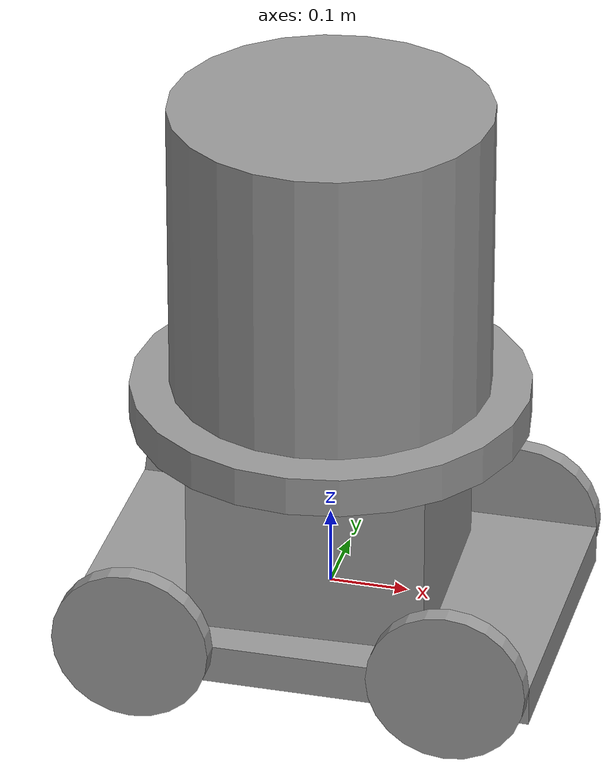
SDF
<?xml version='1.0'?>
<sdf version='1.6'>
  <model name='4x4_robot'>
    <link name='link_0'>
      <pose frame=''>-0 0 -0.02 0 -0 0</pose>
      <inertial>
        <mass>1</mass>
        <inertia>
          <ixx>0.166667</ixx>
          <ixy>0</ixy>
          <ixz>0</ixz>
          <iyy>0.166667</iyy>
          <iyz>0</iyz>
          <izz>0.166667</izz>
        </inertia>
        <pose frame=''>0 0 0 0 -0 0</pose>
      </inertial>
      <self_collide>0</self_collide>
      <kinematic>0</kinematic>
      <gravity>1</gravity>
      <visual name='visual'>
        <pose frame=''>0 0 0 0 -0 0</pose>
        <geometry>
          <box>
            <size>0.6 0.4 0.05</size>
          </box>
        </geometry>
        <material>
          <lighting>1</lighting>
          <script>
            <uri>file://media/materials/scripts/gazebo.material</uri>
            <name>Gazebo/Grey</name>
          </script>
          <shader type='pixel'>
            <normal_map>__default__</normal_map>
          </shader>
          <ambient>0.3 0.3 0.3 1</ambient>
          <diffuse>0.7 0.7 0.7 1</diffuse>
          <specular>0.01 0.01 0.01 1</specular>
          <emissive>0 0 0 1</emissive>
        </material>
        <transparency>0</transparency>
        <cast_shadows>1</cast_shadows>
      </visual>
      <collision name='collision'>
        <laser_retro>0</laser_retro>
        <max_contacts>10</max_contacts>
        <pose frame=''>0 0 0 0 -0 0</pose>
        <geometry>
          <box>
            <size>0.6 0.4 0.05</size>
          </box>
        </geometry>
        <surface>
          <friction>
            <ode>
              <mu>1</mu>
              <mu2>1</mu2>
              <fdir1>0 0 0</fdir1>
              <slip1>0</slip1>
              <slip2>0</slip2>
            </ode>
            <torsional>
              <coefficient>1</coefficient>
              <patch_radius>0</patch_radius>
              <surface_radius>0</surface_radius>
              <use_patch_radius>1</use_patch_radius>
              <ode>
                <slip>0</slip>
              </ode>
            </torsional>
          </friction>
          <bounce>
            <restitution_coefficient>0</restitution_coefficient>
            <threshold>1e+06</threshold>
          </bounce>
          <contact>
            <collide_without_contact>0</collide_without_contact>
            <collide_without_contact_bitmask>1</collide_without_contact_bitmask>
            <collide_bitmask>1</collide_bitmask>
            <ode>
              <soft_cfm>0</soft_cfm>
              <soft_erp>0.2</soft_erp>
              <kp>1e+13</kp>
              <kd>1</kd>
              <max_vel>0.01</max_vel>
              <min_depth>0</min_depth>
            </ode>
            <bullet>
              <split_impulse>1</split_impulse>
              <split_impulse_penetration_threshold>-0.01</split_impulse_penetration_threshold>
              <soft_cfm>0</soft_cfm>
              <soft_erp>0.2</soft_erp>
              <kp>1e+13</kp>
              <kd>1</kd>
            </bullet>
          </contact>
        </surface>
      </collision>
    </link>
    <link name='link_0_0'>
      <pose frame=''>9.4e-05 1e-06 0.104673 2.5e-05 0.001086 0.029379</pose>
      <inertial>
        <mass>1</mass>
        <inertia>
          <ixx>0.166667</ixx>
          <ixy>0</ixy>
          <ixz>0</ixz>
          <iyy>0.166667</iyy>
          <iyz>0</iyz>
          <izz>0.166667</izz>
        </inertia>
        <pose frame=''>0 0 0 0 -0 0</pose>
      </inertial>
      <gravity>1</gravity>
      <self_collide>0</self_collide>
      <kinematic>0</kinematic>
      <visual name='visual'>
        <pose frame=''>0 0 0 0 -0 0</pose>
        <geometry>
          <box>
            <size>0.3 0.3 0.3</size>
          </box>
        </geometry>
        <material>
          <lighting>1</lighting>
          <script>
            <uri>file://media/materials/scripts/gazebo.material</uri>
            <name>Gazebo/Grey</name>
          </script>
          <shader type='pixel'>
            <normal_map>__default__</normal_map>
          </shader>
          <ambient>0.3 0.3 0.3 1</ambient>
          <diffuse>0.7 0.7 0.7 1</diffuse>
          <specular>0.01 0.01 0.01 1</specular>
          <emissive>0 0 0 1</emissive>
        </material>
        <transparency>0</transparency>
        <cast_shadows>1</cast_shadows>
      </visual>
      <collision name='collision'>
        <laser_retro>0</laser_retro>
        <max_contacts>10</max_contacts>
        <pose frame=''>0 0 0 0 -0 0</pose>
        <geometry>
          <box>
            <size>0.3 0.3 0.3</size>
          </box>
        </geometry>
        <surface>
          <friction>
            <ode>
              <mu>1</mu>
              <mu2>1</mu2>
              <fdir1>0 0 0</fdir1>
              <slip1>0</slip1>
              <slip2>0</slip2>
            </ode>
            <torsional>
              <coefficient>1</coefficient>
              <patch_radius>0</patch_radius>
              <surface_radius>0</surface_radius>
              <use_patch_radius>1</use_patch_radius>
              <ode>
                <slip>0</slip>
              </ode>
            </torsional>
          </friction>
          <bounce>
            <restitution_coefficient>0</restitution_coefficient>
            <threshold>1e+06</threshold>
          </bounce>
          <contact>
            <collide_without_contact>0</collide_without_contact>
            <collide_without_contact_bitmask>1</collide_without_contact_bitmask>
            <collide_bitmask>1</collide_bitmask>
            <ode>
              <soft_cfm>0</soft_cfm>
              <soft_erp>0.2</soft_erp>
              <kp>1e+13</kp>
              <kd>1</kd>
              <max_vel>0.01</max_vel>
              <min_depth>0</min_depth>
            </ode>
            <bullet>
              <split_impulse>1</split_impulse>
              <split_impulse_penetration_threshold>-0.01</split_impulse_penetration_threshold>
              <soft_cfm>0</soft_cfm>
              <soft_erp>0.2</soft_erp>
              <kp>1e+13</kp>
              <kd>1</kd>
            </bullet>
          </contact>
        </surface>
      </collision>
    </link>
    <link name='link_1'>
      <pose frame=''>0.2 0.2125 0.005 1.5708 -0 0</pose>
      <inertial>
        <mass>1</mass>
        <inertia>
          <ixx>0.145833</ixx>
          <ixy>0</ixy>
          <ixz>0</ixz>
          <iyy>0.145833</iyy>
          <iyz>0</iyz>
          <izz>0.125</izz>
        </inertia>
        <pose frame=''>0 0 0 0 -0 0</pose>
      </inertial>
      <self_collide>0</self_collide>
      <kinematic>0</kinematic>
      <visual name='visual'>
        <pose frame=''>0 0 0 0 -0 0</pose>
        <geometry>
          <cylinder>
            <radius>0.1</radius>
            <length>0.025</length>
          </cylinder>
        </geometry>
        <material>
          <lighting>1</lighting>
          <script>
            <uri>file://media/materials/scripts/gazebo.material</uri>
            <name>Gazebo/Grey</name>
          </script>
          <shader type='pixel'>
            <normal_map>__default__</normal_map>
          </shader>
          <ambient>0.3 0.3 0.3 1</ambient>
          <diffuse>0.7 0.7 0.7 1</diffuse>
          <specular>0.01 0.01 0.01 1</specular>
          <emissive>0 0 0 1</emissive>
        </material>
        <transparency>0</transparency>
        <cast_shadows>1</cast_shadows>
      </visual>
      <collision name='collision'>
        <laser_retro>0</laser_retro>
        <max_contacts>10</max_contacts>
        <pose frame=''>0 0 0 0 -0 0</pose>
        <geometry>
          <cylinder>
            <radius>0.1</radius>
            <length>0.025</length>
          </cylinder>
        </geometry>
        <surface>
          <friction>
            <ode>
              <mu>1</mu>
              <mu2>1</mu2>
              <fdir1>0 0 0</fdir1>
              <slip1>0</slip1>
              <slip2>0</slip2>
            </ode>
            <torsional>
              <coefficient>1</coefficient>
              <patch_radius>0</patch_radius>
              <surface_radius>0</surface_radius>
              <use_patch_radius>1</use_patch_radius>
              <ode>
                <slip>0</slip>
              </ode>
            </torsional>
          </friction>
          <bounce>
            <restitution_coefficient>0</restitution_coefficient>
            <threshold>1e+06</threshold>
          </bounce>
          <contact>
            <collide_without_contact>0</collide_without_contact>
            <collide_without_contact_bitmask>1</collide_without_contact_bitmask>
            <collide_bitmask>1</collide_bitmask>
            <ode>
              <soft_cfm>0</soft_cfm>
              <soft_erp>0.2</soft_erp>
              <kp>1e+13</kp>
              <kd>1</kd>
              <max_vel>0.01</max_vel>
              <min_depth>0</min_depth>
            </ode>
            <bullet>
              <split_impulse>1</split_impulse>
              <split_impulse_penetration_threshold>-0.01</split_impulse_penetration_threshold>
              <soft_cfm>0</soft_cfm>
              <soft_erp>0.2</soft_erp>
              <kp>1e+13</kp>
              <kd>1</kd>
            </bullet>
          </contact>
        </surface>
      </collision>
    </link>
    <link name='link_1_0'>
      <pose frame=''>0.000268 2e-06 0.264673 2.5e-05 0.001086 0.029379</pose>
      <inertial>
        <mass>1</mass>
        <inertia>
          <ixx>0.145833</ixx>
          <ixy>0</ixy>
          <ixz>0</ixz>
          <iyy>0.145833</iyy>
          <iyz>0</iyz>
          <izz>0.125</izz>
        </inertia>
        <pose frame=''>0 0 0 0 -0 0</pose>
      </inertial>
      <gravity>1</gravity>
      <self_collide>0</self_collide>
      <kinematic>0</kinematic>
      <visual name='visual'>
        <pose frame=''>0 0 0 0 -0 0</pose>
        <geometry>
          <cylinder>
            <radius>0.25</radius>
            <length>0.05</length>
          </cylinder>
        </geometry>
        <material>
          <lighting>1</lighting>
          <script>
            <uri>file://media/materials/scripts/gazebo.material</uri>
            <name>Gazebo/Grey</name>
          </script>
          <shader type='pixel'>
            <normal_map>__default__</normal_map>
          </shader>
          <ambient>0.3 0.3 0.3 1</ambient>
          <diffuse>0.7 0.7 0.7 1</diffuse>
          <specular>0.01 0.01 0.01 1</specular>
          <emissive>0 0 0 1</emissive>
        </material>
        <transparency>0</transparency>
        <cast_shadows>1</cast_shadows>
      </visual>
      <collision name='collision'>
        <laser_retro>0</laser_retro>
        <max_contacts>10</max_contacts>
        <pose frame=''>0 0 0 0 -0 0</pose>
        <geometry>
          <cylinder>
            <radius>0.25</radius>
            <length>0.05</length>
          </cylinder>
        </geometry>
        <surface>
          <friction>
            <ode>
              <mu>1</mu>
              <mu2>1</mu2>
              <fdir1>0 0 0</fdir1>
              <slip1>0</slip1>
              <slip2>0</slip2>
            </ode>
            <torsional>
              <coefficient>1</coefficient>
              <patch_radius>0</patch_radius>
              <surface_radius>0</surface_radius>
              <use_patch_radius>1</use_patch_radius>
              <ode>
                <slip>0</slip>
              </ode>
            </torsional>
          </friction>
          <bounce>
            <restitution_coefficient>0</restitution_coefficient>
            <threshold>1e+06</threshold>
          </bounce>
          <contact>
            <collide_without_contact>0</collide_without_contact>
            <collide_without_contact_bitmask>1</collide_without_contact_bitmask>
            <collide_bitmask>1</collide_bitmask>
            <ode>
              <soft_cfm>0</soft_cfm>
              <soft_erp>0.2</soft_erp>
              <kp>1e+13</kp>
              <kd>1</kd>
              <max_vel>0.01</max_vel>
              <min_depth>0</min_depth>
            </ode>
            <bullet>
              <split_impulse>1</split_impulse>
              <split_impulse_penetration_threshold>-0.01</split_impulse_penetration_threshold>
              <soft_cfm>0</soft_cfm>
              <soft_erp>0.2</soft_erp>
              <kp>1e+13</kp>
              <kd>1</kd>
            </bullet>
          </contact>
        </surface>
      </collision>
    </link>
    <link name='link_1_clone'>
      <pose frame=''>-0.2 -0.2125 0.005 1.5708 -0 0</pose>
      <inertial>
        <mass>1</mass>
        <inertia>
          <ixx>0.145833</ixx>
          <ixy>0</ixy>
          <ixz>0</ixz>
          <iyy>0.145833</iyy>
          <iyz>0</iyz>
          <izz>0.125</izz>
        </inertia>
        <pose frame=''>0 0 0 0 -0 0</pose>
      </inertial>
      <self_collide>0</self_collide>
      <kinematic>0</kinematic>
      <visual name='visual'>
        <pose frame=''>0 0 0 0 -0 0</pose>
        <geometry>
          <cylinder>
            <radius>0.1</radius>
            <length>0.025</length>
          </cylinder>
        </geometry>
        <material>
          <lighting>1</lighting>
          <script>
            <uri>file://media/materials/scripts/gazebo.material</uri>
            <name>Gazebo/Grey</name>
          </script>
          <shader type='pixel'>
            <normal_map>__default__</normal_map>
          </shader>
          <ambient>0.3 0.3 0.3 1</ambient>
          <diffuse>0.7 0.7 0.7 1</diffuse>
          <specular>0.01 0.01 0.01 1</specular>
          <emissive>0 0 0 1</emissive>
        </material>
        <transparency>0</transparency>
        <cast_shadows>1</cast_shadows>
      </visual>
      <collision name='collision'>
        <laser_retro>0</laser_retro>
        <max_contacts>10</max_contacts>
        <pose frame=''>0 0 0 0 -0 0</pose>
        <geometry>
          <cylinder>
            <radius>0.1</radius>
            <length>0.025</length>
          </cylinder>
        </geometry>
        <surface>
          <friction>
            <ode>
              <mu>1</mu>
              <mu2>1</mu2>
              <fdir1>0 0 0</fdir1>
              <slip1>0</slip1>
              <slip2>0</slip2>
            </ode>
            <torsional>
              <coefficient>1</coefficient>
              <patch_radius>0</patch_radius>
              <surface_radius>0</surface_radius>
              <use_patch_radius>1</use_patch_radius>
              <ode>
                <slip>0</slip>
              </ode>
            </torsional>
          </friction>
          <bounce>
            <restitution_coefficient>0</restitution_coefficient>
            <threshold>1e+06</threshold>
          </bounce>
          <contact>
            <collide_without_contact>0</collide_without_contact>
            <collide_without_contact_bitmask>1</collide_without_contact_bitmask>
            <collide_bitmask>1</collide_bitmask>
            <ode>
              <soft_cfm>0</soft_cfm>
              <soft_erp>0.2</soft_erp>
              <kp>1e+13</kp>
              <kd>1</kd>
              <max_vel>0.01</max_vel>
              <min_depth>0</min_depth>
            </ode>
            <bullet>
              <split_impulse>1</split_impulse>
              <split_impulse_penetration_threshold>-0.01</split_impulse_penetration_threshold>
              <soft_cfm>0</soft_cfm>
              <soft_erp>0.2</soft_erp>
              <kp>1e+13</kp>
              <kd>1</kd>
            </bullet>
          </contact>
        </surface>
      </collision>
    </link>
    <link name='link_1_clone_0'>
      <pose frame=''>-0.2 0.2125 0.005 1.5708 -0 0</pose>
      <inertial>
        <mass>1</mass>
        <inertia>
          <ixx>0.145833</ixx>
          <ixy>0</ixy>
          <ixz>0</ixz>
          <iyy>0.145833</iyy>
          <iyz>0</iyz>
          <izz>0.125</izz>
        </inertia>
        <pose frame=''>0 0 0 0 -0 0</pose>
      </inertial>
      <self_collide>0</self_collide>
      <kinematic>0</kinematic>
      <visual name='visual'>
        <pose frame=''>0 0 0 0 -0 0</pose>
        <geometry>
          <cylinder>
            <radius>0.1</radius>
            <length>0.025</length>
          </cylinder>
        </geometry>
        <material>
          <lighting>1</lighting>
          <script>
            <uri>file://media/materials/scripts/gazebo.material</uri>
            <name>Gazebo/Grey</name>
          </script>
          <shader type='pixel'>
            <normal_map>__default__</normal_map>
          </shader>
          <ambient>0.3 0.3 0.3 1</ambient>
          <diffuse>0.7 0.7 0.7 1</diffuse>
          <specular>0.01 0.01 0.01 1</specular>
          <emissive>0 0 0 1</emissive>
        </material>
        <transparency>0</transparency>
        <cast_shadows>1</cast_shadows>
      </visual>
      <collision name='collision'>
        <laser_retro>0</laser_retro>
        <max_contacts>10</max_contacts>
        <pose frame=''>0 0 0 0 -0 0</pose>
        <geometry>
          <cylinder>
            <radius>0.1</radius>
            <length>0.025</length>
          </cylinder>
        </geometry>
        <surface>
          <friction>
            <ode>
              <mu>1</mu>
              <mu2>1</mu2>
              <fdir1>0 0 0</fdir1>
              <slip1>0</slip1>
              <slip2>0</slip2>
            </ode>
            <torsional>
              <coefficient>1</coefficient>
              <patch_radius>0</patch_radius>
              <surface_radius>0</surface_radius>
              <use_patch_radius>1</use_patch_radius>
              <ode>
                <slip>0</slip>
              </ode>
            </torsional>
          </friction>
          <bounce>
            <restitution_coefficient>0</restitution_coefficient>
            <threshold>1e+06</threshold>
          </bounce>
          <contact>
            <collide_without_contact>0</collide_without_contact>
            <collide_without_contact_bitmask>1</collide_without_contact_bitmask>
            <collide_bitmask>1</collide_bitmask>
            <ode>
              <soft_cfm>0</soft_cfm>
              <soft_erp>0.2</soft_erp>
              <kp>1e+13</kp>
              <kd>1</kd>
              <max_vel>0.01</max_vel>
              <min_depth>0</min_depth>
            </ode>
            <bullet>
              <split_impulse>1</split_impulse>
              <split_impulse_penetration_threshold>-0.01</split_impulse_penetration_threshold>
              <soft_cfm>0</soft_cfm>
              <soft_erp>0.2</soft_erp>
              <kp>1e+13</kp>
              <kd>1</kd>
            </bullet>
          </contact>
        </surface>
      </collision>
    </link>
    <link name='link_1_clone_1'>
      <pose frame=''>0.2 -0.2125 0.005 1.5708 -0 0</pose>
      <inertial>
        <mass>1</mass>
        <inertia>
          <ixx>0.145833</ixx>
          <ixy>0</ixy>
          <ixz>0</ixz>
          <iyy>0.145833</iyy>
          <iyz>0</iyz>
          <izz>0.125</izz>
        </inertia>
        <pose frame=''>0 0 0 0 -0 0</pose>
      </inertial>
      <self_collide>0</self_collide>
      <kinematic>0</kinematic>
      <visual name='visual'>
        <pose frame=''>0 0 0 0 -0 0</pose>
        <geometry>
          <cylinder>
            <radius>0.1</radius>
            <length>0.025</length>
          </cylinder>
        </geometry>
        <material>
          <lighting>1</lighting>
          <script>
            <uri>file://media/materials/scripts/gazebo.material</uri>
            <name>Gazebo/Grey</name>
          </script>
          <shader type='pixel'>
            <normal_map>__default__</normal_map>
          </shader>
          <ambient>0.3 0.3 0.3 1</ambient>
          <diffuse>0.7 0.7 0.7 1</diffuse>
          <specular>0.01 0.01 0.01 1</specular>
          <emissive>0 0 0 1</emissive>
        </material>
        <transparency>0</transparency>
        <cast_shadows>1</cast_shadows>
      </visual>
      <collision name='collision'>
        <laser_retro>0</laser_retro>
        <max_contacts>10</max_contacts>
        <pose frame=''>0 0 0 0 -0 0</pose>
        <geometry>
          <cylinder>
            <radius>0.1</radius>
            <length>0.025</length>
          </cylinder>
        </geometry>
        <surface>
          <friction>
            <ode>
              <mu>1</mu>
              <mu2>1</mu2>
              <fdir1>0 0 0</fdir1>
              <slip1>0</slip1>
              <slip2>0</slip2>
            </ode>
            <torsional>
              <coefficient>1</coefficient>
              <patch_radius>0</patch_radius>
              <surface_radius>0</surface_radius>
              <use_patch_radius>1</use_patch_radius>
              <ode>
                <slip>0</slip>
              </ode>
            </torsional>
          </friction>
          <bounce>
            <restitution_coefficient>0</restitution_coefficient>
            <threshold>1e+06</threshold>
          </bounce>
          <contact>
            <collide_without_contact>0</collide_without_contact>
            <collide_without_contact_bitmask>1</collide_without_contact_bitmask>
            <collide_bitmask>1</collide_bitmask>
            <ode>
              <soft_cfm>0</soft_cfm>
              <soft_erp>0.2</soft_erp>
              <kp>1e+13</kp>
              <kd>1</kd>
              <max_vel>0.01</max_vel>
              <min_depth>0</min_depth>
            </ode>
            <bullet>
              <split_impulse>1</split_impulse>
              <split_impulse_penetration_threshold>-0.01</split_impulse_penetration_threshold>
              <soft_cfm>0</soft_cfm>
              <soft_erp>0.2</soft_erp>
              <kp>1e+13</kp>
              <kd>1</kd>
            </bullet>
          </contact>
        </surface>
      </collision>
    </link>
    <link name='link_2'>
      <pose frame=''>0.000485 4e-06 0.464673 2.5e-05 0.001086 0.029379</pose>
      <inertial>
        <mass>1</mass>
        <inertia>
          <ixx>0.145833</ixx>
          <ixy>0</ixy>
          <ixz>0</ixz>
          <iyy>0.145833</iyy>
          <iyz>0</iyz>
          <izz>0.125</izz>
        </inertia>
        <pose frame=''>0 0 0 0 -0 0</pose>
      </inertial>
      <gravity>1</gravity>
      <self_collide>0</self_collide>
      <kinematic>0</kinematic>
      <visual name='visual'>
        <pose frame=''>0 0 0 0 -0 0</pose>
        <geometry>
          <cylinder>
            <radius>0.2</radius>
            <length>0.4</length>
          </cylinder>
        </geometry>
        <material>
          <lighting>1</lighting>
          <script>
            <uri>file://media/materials/scripts/gazebo.material</uri>
            <name>Gazebo/Grey</name>
          </script>
          <shader type='pixel'>
            <normal_map>__default__</normal_map>
          </shader>
          <ambient>0.3 0.3 0.3 1</ambient>
          <diffuse>0.7 0.7 0.7 1</diffuse>
          <specular>0.01 0.01 0.01 1</specular>
          <emissive>0 0 0 1</emissive>
        </material>
        <transparency>0</transparency>
        <cast_shadows>1</cast_shadows>
      </visual>
      <collision name='collision'>
        <laser_retro>0</laser_retro>
        <max_contacts>10</max_contacts>
        <pose frame=''>0 0 0 0 -0 0</pose>
        <geometry>
          <cylinder>
            <radius>0.2</radius>
            <length>0.4</length>
          </cylinder>
        </geometry>
        <surface>
          <friction>
            <ode>
              <mu>1</mu>
              <mu2>1</mu2>
              <fdir1>0 0 0</fdir1>
              <slip1>0</slip1>
              <slip2>0</slip2>
            </ode>
            <torsional>
              <coefficient>1</coefficient>
              <patch_radius>0</patch_radius>
              <surface_radius>0</surface_radius>
              <use_patch_radius>1</use_patch_radius>
              <ode>
                <slip>0</slip>
              </ode>
            </torsional>
          </friction>
          <bounce>
            <restitution_coefficient>0</restitution_coefficient>
            <threshold>1e+06</threshold>
          </bounce>
          <contact>
            <collide_without_contact>0</collide_without_contact>
            <collide_without_contact_bitmask>1</collide_without_contact_bitmask>
            <collide_bitmask>1</collide_bitmask>
            <ode>
              <soft_cfm>0</soft_cfm>
              <soft_erp>0.2</soft_erp>
              <kp>1e+13</kp>
              <kd>1</kd>
              <max_vel>0.01</max_vel>
              <min_depth>0</min_depth>
            </ode>
            <bullet>
              <split_impulse>1</split_impulse>
              <split_impulse_penetration_threshold>-0.01</split_impulse_penetration_threshold>
              <soft_cfm>0</soft_cfm>
              <soft_erp>0.2</soft_erp>
              <kp>1e+13</kp>
              <kd>1</kd>
            </bullet>
          </contact>
        </surface>
      </collision>
    </link>
    <joint name='link_0_0_JOINT_1' type='fixed'>
      <parent>link_0_0</parent>
      <child>link_1_0</child>
      <pose frame=''>0 0 0 0 -0 0</pose>
      <physics>
        <ode>
          <limit>
            <cfm>0</cfm>
            <erp>0.2</erp>
          </limit>
          <suspension>
            <cfm>0</cfm>
            <erp>0.2</erp>
          </suspension>
        </ode>
      </physics>
    </joint>
    <joint name='link_0_JOINT_0_0' type='fixed'>
      <parent>link_0</parent>
      <child>link_0_0</child>
      <pose frame=''>0 0 0 0 -0 0</pose>
      <physics>
        <ode>
          <limit>
            <cfm>0</cfm>
            <erp>0.2</erp>
          </limit>
          <suspension>
            <cfm>0</cfm>
            <erp>0.2</erp>
          </suspension>
        </ode>
      </physics>
    </joint>
    <joint name='link_0_JOINT_0' type='revolute'>
      <parent>link_0</parent>
      <child>link_1_clone</child>
      <pose frame=''>0 0 0 0 -0 0</pose>
      <axis>
        <xyz>0 0 1</xyz>
        <use_parent_model_frame>0</use_parent_model_frame>
        <limit>
          <lower>-1.79769e+308</lower>
          <upper>1.79769e+308</upper>
          <effort>-1</effort>
          <velocity>-1</velocity>
        </limit>
        <dynamics>
          <spring_reference>0</spring_reference>
          <spring_stiffness>0</spring_stiffness>
          <damping>0</damping>
          <friction>0</friction>
        </dynamics>
      </axis>
      <physics>
        <ode>
          <limit>
            <cfm>0</cfm>
            <erp>0.2</erp>
          </limit>
          <suspension>
            <cfm>0</cfm>
            <erp>0.2</erp>
          </suspension>
        </ode>
      </physics>
    </joint>
    <joint name='link_0_JOINT_1' type='revolute'>
      <parent>link_0</parent>
      <child>link_1_clone_1</child>
      <pose frame=''>0 0 0 0 -0 0</pose>
      <axis>
        <xyz>0 0 1</xyz>
        <use_parent_model_frame>0</use_parent_model_frame>
        <limit>
          <lower>-1.79769e+308</lower>
          <upper>1.79769e+308</upper>
          <effort>-1</effort>
          <velocity>-1</velocity>
        </limit>
        <dynamics>
          <spring_reference>0</spring_reference>
          <spring_stiffness>0</spring_stiffness>
          <damping>0</damping>
          <friction>0</friction>
        </dynamics>
      </axis>
      <physics>
        <ode>
          <limit>
            <cfm>0</cfm>
            <erp>0.2</erp>
          </limit>
          <suspension>
            <cfm>0</cfm>
            <erp>0.2</erp>
          </suspension>
        </ode>
      </physics>
    </joint>
    <joint name='link_0_JOINT_2' type='revolute'>
      <parent>link_0</parent>
      <child>link_1_clone_0</child>
      <pose frame=''>0 0 0 0 -0 0</pose>
      <axis>
        <xyz>0 0 1</xyz>
        <use_parent_model_frame>0</use_parent_model_frame>
        <limit>
          <lower>-1.79769e+308</lower>
          <upper>1.79769e+308</upper>
          <effort>-1</effort>
          <velocity>-1</velocity>
        </limit>
        <dynamics>
          <spring_reference>0</spring_reference>
          <spring_stiffness>0</spring_stiffness>
          <damping>0</damping>
          <friction>0</friction>
        </dynamics>
      </axis>
      <physics>
        <ode>
          <limit>
            <cfm>0</cfm>
            <erp>0.2</erp>
          </limit>
          <suspension>
            <cfm>0</cfm>
            <erp>0.2</erp>
          </suspension>
        </ode>
      </physics>
    </joint>
    <joint name='link_0_JOINT_7' type='revolute'>
      <parent>link_0</parent>
      <child>link_1</child>
      <pose frame=''>0 0 0 0 -0.21 0</pose>
      <axis>
        <xyz>0 0 1</xyz>
        <use_parent_model_frame>0</use_parent_model_frame>
        <limit>
          <lower>-1.79769e+308</lower>
          <upper>1.79769e+308</upper>
          <effort>-1</effort>
          <velocity>-1</velocity>
        </limit>
        <dynamics>
          <spring_reference>0</spring_reference>
          <spring_stiffness>0</spring_stiffness>
          <damping>0</damping>
          <friction>0</friction>
        </dynamics>
      </axis>
      <physics>
        <ode>
          <limit>
            <cfm>0</cfm>
            <erp>0.2</erp>
          </limit>
          <suspension>
            <cfm>0</cfm>
            <erp>0.2</erp>
          </suspension>
        </ode>
      </physics>
    </joint>
    <joint name='link_1_0_JOINT_2' type='revolute'>
      <parent>link_1_0</parent>
      <child>link_2</child>
      <pose frame=''>0 0 0 0 -0 0</pose>
      <axis>
        <xyz>1 0 0</xyz>
        <use_parent_model_frame>0</use_parent_model_frame>
        <limit>
          <lower>-1.79769e+308</lower>
          <upper>1.79769e+308</upper>
          <effort>-1</effort>
          <velocity>-1</velocity>
        </limit>
        <dynamics>
          <spring_reference>0</spring_reference>
          <spring_stiffness>0</spring_stiffness>
          <damping>0</damping>
        </dynamics>
      </axis>
      <physics>
        <ode>
          <limit>
            <cfm>0</cfm>
            <erp>0.2</erp>
          </limit>
          <suspension>
            <cfm>0</cfm>
            <erp>0.2</erp>
          </suspension>
        </ode>
      </physics>
    </joint>
    <static>0</static>
    <allow_auto_disable>1</allow_auto_disable>
  </model>
</sdf>
